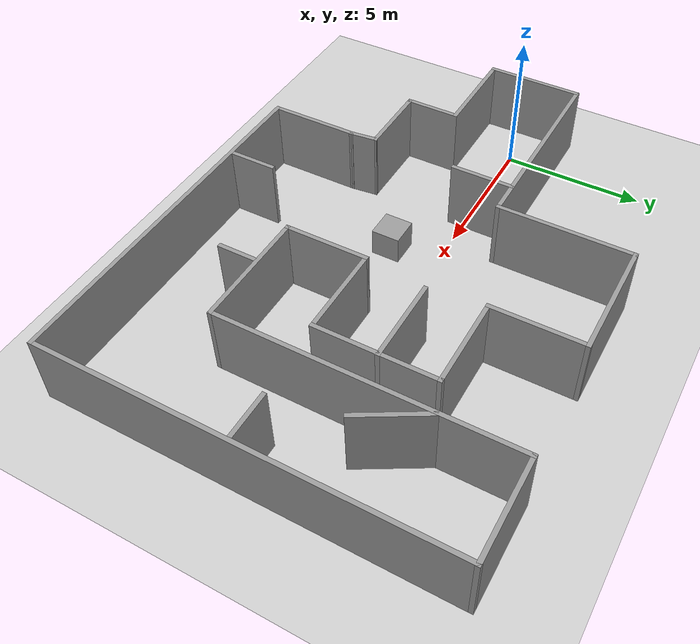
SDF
<sdf version="1.6">
 <world name="default">
  <light name="sun" type="directional">
   <pose>0 0 10 0 -0 0</pose>
   <diffuse>0.8 0.8 0.8 1</diffuse>
   <specular>0.1 0.1 0.1 1</specular>
   <attenuation>
    <range>1000</range>
    <constant>0.9</constant>
    <linear>0.01</linear>
    <quadratic>0.001</quadratic>
   </attenuation>
   <direction>-0.5 0.5 -1</direction>
  </light>
  <model name="ground_plane">
   <static>1</static>
   <link name="link">
    <collision name="collision">
     <geometry><plane><normal>0 0 1</normal><size>100 100</size></plane></geometry>
     <surface><friction><ode><mu>100</mu><mu2>50</mu2></ode></friction></surface>
    </collision>
    <visual name="visual">
     <cast_shadows>0</cast_shadows>
     <geometry><plane><normal>0 0 1</normal><size>100 100</size></plane></geometry>
     <material>
      <script><uri>file://media/materials/scripts/gazebo.material</uri><name>Gazebo/Grey</name></script>
     </material>
    </visual>
   </link>
  </model>
  <gravity>0 0 -9.8</gravity>
  <magnetic_field>6e-06 2.3e-05 -4.2e-05</magnetic_field>
  <atmosphere type="adiabatic"/>
  <physics name="default_physics" default="0" type="ode">
   <max_step_size>0.001</max_step_size>
   <real_time_factor>1</real_time_factor>
   <real_time_update_rate>1000</real_time_update_rate>
  </physics>
  <scene><ambient>0.4 0.4 0.4 1</ambient><background>0.7 0.7 0.7 1</background><shadows>1</shadows></scene>
  <spherical_coordinates>
   <surface_model>EARTH_WGS84</surface_model>
   <latitude_deg>0</latitude_deg>
   <longitude_deg>0</longitude_deg>
   <elevation>0</elevation>
   <heading_deg>0</heading_deg>
  </spherical_coordinates>
  <model name="map_world">
   <pose>7.56591 -0.635643 0 0 -0 0</pose>
   <link name="Wall_0">
    <collision name="Wall_0_Collision">
     <geometry><box><size>3.25 0.15 2.5</size></box></geometry>
     <pose>0 0 1.25 0 -0 0</pose>
    </collision>
    <visual name="Wall_0_Visual">
     <pose>0 0 1.25 0 -0 0</pose>
     <geometry><box><size>3.25 0.15 2.5</size></box></geometry>
     <material>
      <script><uri>file://media/materials/scripts/gazebo.material</uri><name>Gazebo/Grey</name></script>
      <ambient>1 1 1 1</ambient>
     </material>
    </visual>
    <pose>-3.275 -5.375 0 0 0 -1.5708</pose>
   </link>
   <link name="Wall_1">
    <collision name="Wall_1_Collision">
     <geometry><box><size>12.75 0.15 2.5</size></box></geometry>
     <pose>0 0 1.25 0 -0 0</pose>
    </collision>
    <visual name="Wall_1_Visual">
     <pose>0 0 1.25 0 -0 0</pose>
     <geometry><box><size>12.75 0.15 2.5</size></box></geometry>
     <material>
      <script><uri>file://media/materials/scripts/gazebo.material</uri><name>Gazebo/Grey</name></script>
      <ambient>1 1 1 1</ambient>
     </material>
    </visual>
    <pose>3.025 -6.925 0 0 -0 0</pose>
   </link>
   <link name="Wall_10">
    <collision name="Wall_10_Collision">
     <geometry><box><size>3.25 0.15 2.5</size></box></geometry>
     <pose>0 0 1.25 0 -0 0</pose>
    </collision>
    <visual name="Wall_10_Visual">
     <pose>0 0 1.25 0 -0 0</pose>
     <geometry><box><size>3.25 0.15 2.5</size></box></geometry>
     <material>
      <script><uri>file://media/materials/scripts/gazebo.material</uri><name>Gazebo/Grey</name></script>
      <ambient>1 1 1 1</ambient>
     </material>
    </visual>
    <pose>1.875 5.325 0 0 -0 1.5708</pose>
   </link>
   <link name="Wall_11">
    <collision name="Wall_11_Collision">
     <geometry><box><size>4.25 0.15 2.5</size></box></geometry>
     <pose>0 0 1.25 0 -0 0</pose>
    </collision>
    <visual name="Wall_11_Visual">
     <pose>0 0 1.25 0 -0 0</pose>
     <geometry><box><size>4.25 0.15 2.5</size></box></geometry>
     <material>
      <script><uri>file://media/materials/scripts/gazebo.material</uri><name>Gazebo/Grey</name></script>
      <ambient>1 1 1 1</ambient>
     </material>
    </visual>
    <pose>-0.175 6.875 0 0 -0 3.14159</pose>
   </link>
   <link name="Wall_12">
    <collision name="Wall_12_Collision">
     <geometry><box><size>4.75 0.15 2.5</size></box></geometry>
     <pose>0 0 1.25 0 -0 0</pose>
    </collision>
    <visual name="Wall_12_Visual">
     <pose>0 0 1.25 0 -0 0</pose>
     <geometry><box><size>4.75 0.15 2.5</size></box></geometry>
     <material>
      <script><uri>file://media/materials/scripts/gazebo.material</uri><name>Gazebo/Grey</name></script>
      <ambient>1 1 1 1</ambient>
     </material>
    </visual>
    <pose>-2.225 4.575 0 0 0 -1.5708</pose>
   </link>
   <link name="Wall_13">
    <collision name="Wall_13_Collision">
     <geometry><box><size>7.25 0.15 2.5</size></box></geometry>
     <pose>0 0 1.25 0 -0 0</pose>
    </collision>
    <visual name="Wall_13_Visual">
     <pose>0 0 1.25 0 -0 0</pose>
     <geometry><box><size>7.25 0.15 2.5</size></box></geometry>
     <material>
      <script><uri>file://media/materials/scripts/gazebo.material</uri><name>Gazebo/Grey</name></script>
      <ambient>1 1 1 1</ambient>
     </material>
    </visual>
    <pose>-5.775 2.275 0 0 -0 3.14159</pose>
   </link>
   <link name="Wall_14">
    <collision name="Wall_14_Collision">
     <geometry><box><size>3.5 0.15 2.5</size></box></geometry>
     <pose>0 0 1.25 0 -0 0</pose>
    </collision>
    <visual name="Wall_14_Visual">
     <pose>0 0 1.25 0 -0 0</pose>
     <geometry><box><size>3.5 0.15 2.5</size></box></geometry>
     <material>
      <script><uri>file://media/materials/scripts/gazebo.material</uri><name>Gazebo/Grey</name></script>
      <ambient>1 1 1 1</ambient>
     </material>
    </visual>
    <pose>-9.325 0.6 0 0 0 -1.5708</pose>
   </link>
   <link name="Wall_15">
    <collision name="Wall_15_Collision">
     <geometry><box><size>3.5 0.15 2.5</size></box></geometry>
     <pose>0 0 1.25 0 -0 0</pose>
    </collision>
    <visual name="Wall_15_Visual">
     <pose>0 0 1.25 0 -0 0</pose>
     <geometry><box><size>3.5 0.15 2.5</size></box></geometry>
     <material>
      <script><uri>file://media/materials/scripts/gazebo.material</uri><name>Gazebo/Grey</name></script>
      <ambient>1 1 1 1</ambient>
     </material>
    </visual>
    <pose>-7.65 -1.075 0 0 -0 0</pose>
   </link>
   <link name="Wall_16">
    <collision name="Wall_16_Collision">
     <geometry><box><size>2 0.15 2.5</size></box></geometry>
     <pose>0 0 1.25 0 -0 0</pose>
    </collision>
    <visual name="Wall_16_Visual">
     <pose>0 0 1.25 0 -0 0</pose>
     <geometry><box><size>2 0.15 2.5</size></box></geometry>
     <material>
      <script><uri>file://media/materials/scripts/gazebo.material</uri><name>Gazebo/Grey</name></script>
      <ambient>1 1 1 1</ambient>
     </material>
    </visual>
    <pose>-5.975 -2 0 0 0 -1.5708</pose>
   </link>
   <link name="Wall_17">
    <collision name="Wall_17_Collision">
     <geometry><box><size>2.75 0.15 2.5</size></box></geometry>
     <pose>0 0 1.25 0 -0 0</pose>
    </collision>
    <visual name="Wall_17_Visual">
     <pose>0 0 1.25 0 -0 0</pose>
     <geometry><box><size>2.75 0.15 2.5</size></box></geometry>
     <material>
      <script><uri>file://media/materials/scripts/gazebo.material</uri><name>Gazebo/Grey</name></script>
      <ambient>1 1 1 1</ambient>
     </material>
    </visual>
    <pose>-4.675 -2.925 0 0 -0 0</pose>
   </link>
   <link name="Wall_18">
    <collision name="Wall_18_Collision">
     <geometry><box><size>1.05554 0.15 2.5</size></box></geometry>
     <pose>0 0 1.25 0 -0 0</pose>
    </collision>
    <visual name="Wall_18_Visual">
     <pose>0 0 1.25 0 -0 0</pose>
     <geometry><box><size>1.05554 0.15 2.5</size></box></geometry>
     <material>
      <script><uri>file://media/materials/scripts/gazebo.material</uri><name>Gazebo/Grey</name></script>
      <ambient>1 1 1 1</ambient>
     </material>
    </visual>
    <pose>-3.325 -3.375 0 0 0 -1.46014</pose>
   </link>
   <link name="Wall_2">
    <collision name="Wall_2_Collision">
     <geometry><box><size>14 0.15 2.5</size></box></geometry>
     <pose>0 0 1.25 0 -0 0</pose>
    </collision>
    <visual name="Wall_2_Visual">
     <pose>0 0 1.25 0 -0 0</pose>
     <geometry><box><size>14 0.15 2.5</size></box></geometry>
     <material>
      <script><uri>file://media/materials/scripts/gazebo.material</uri><name>Gazebo/Grey</name></script>
      <ambient>1 1 1 1</ambient>
     </material>
    </visual>
    <pose>9.325 0 0 0 -0 1.5708</pose>
   </link>
   <link name="Wall_20">
    <collision name="Wall_20_Collision">
     <geometry><box><size>2.25 0.15 2.5</size></box></geometry>
     <pose>0 0 1.25 0 -0 0</pose>
    </collision>
    <visual name="Wall_20_Visual">
     <pose>0 0 1.25 0 -0 0</pose>
     <geometry><box><size>2.25 0.15 2.5</size></box></geometry>
     <material>
      <script><uri>file://media/materials/scripts/gazebo.material</uri><name>Gazebo/Grey</name></script>
      <ambient>1 1 1 1</ambient>
     </material>
    </visual>
    <pose>-3.34071 1.19162 0 0 0 -1.5708</pose>
   </link>
   <link name="Wall_22">
    <collision name="Wall_22_Collision">
     <geometry><box><size>3 0.15 2.5</size></box></geometry>
     <pose>0 0 1.25 0 -0 0</pose>
    </collision>
    <visual name="Wall_22_Visual">
     <pose>0 0 1.25 0 -0 0</pose>
     <geometry><box><size>3 0.15 2.5</size></box></geometry>
     <material>
      <script><uri>file://media/materials/scripts/gazebo.material</uri><name>Gazebo/Grey</name></script>
      <ambient>1 1 1 1</ambient>
     </material>
    </visual>
    <pose>3.56015 1.84262 0 0 -0 3.14159</pose>
   </link>
   <link name="Wall_24">
    <collision name="Wall_24_Collision">
     <geometry><box><size>2.5 0.15 2.5</size></box></geometry>
     <pose>0 0 1.25 0 -0 0</pose>
    </collision>
    <visual name="Wall_24_Visual">
     <pose>0 0 1.25 0 -0 0</pose>
     <geometry><box><size>2.5 0.15 2.5</size></box></geometry>
     <material>
      <script><uri>file://media/materials/scripts/gazebo.material</uri><name>Gazebo/Grey</name></script>
      <ambient>1 1 1 1</ambient>
     </material>
    </visual>
    <pose>6.61006 3.13926 0 0 0 -1.0472</pose>
   </link>
   <link name="Wall_27">
    <collision name="Wall_27_Collision">
     <geometry><box><size>1.75 0.15 2.5</size></box></geometry>
     <pose>0 0 1.25 0 -0 0</pose>
    </collision>
    <visual name="Wall_27_Visual">
     <pose>0 0 1.25 0 -0 0</pose>
     <geometry><box><size>1.75 0.15 2.5</size></box></geometry>
     <material>
      <script><uri>file://media/materials/scripts/gazebo.material</uri><name>Gazebo/Grey</name></script>
      <ambient>1 1 1 1</ambient>
     </material>
    </visual>
    <pose>8.49438 -0.178996 0 0 -0 3.14159</pose>
   </link>
   <link name="Wall_29">
    <collision name="Wall_29_Collision">
     <geometry><box><size>1.75 0.15 2.5</size></box></geometry>
     <pose>0 0 1.25 0 -0 0</pose>
    </collision>
    <visual name="Wall_29_Visual">
     <pose>0 0 1.25 0 -0 0</pose>
     <geometry><box><size>1.75 0.15 2.5</size></box></geometry>
     <material>
      <script><uri>file://media/materials/scripts/gazebo.material</uri><name>Gazebo/Grey</name></script>
      <ambient>1 1 1 1</ambient>
     </material>
    </visual>
    <pose>-0.361492 -6.05565 0 0 -0 1.5708</pose>
   </link>
   <link name="Wall_3">
    <collision name="Wall_3_Collision">
     <geometry><box><size>3.5 0.15 2.5</size></box></geometry>
     <pose>0 0 1.25 0 -0 0</pose>
    </collision>
    <visual name="Wall_3_Visual">
     <pose>0 0 1.25 0 -0 0</pose>
     <geometry><box><size>3.5 0.15 2.5</size></box></geometry>
     <material>
      <script><uri>file://media/materials/scripts/gazebo.material</uri><name>Gazebo/Grey</name></script>
      <ambient>1 1 1 1</ambient>
     </material>
    </visual>
    <pose>7.65 6.925 0 0 -0 3.14159</pose>
   </link>
   <link name="Wall_31">
    <collision name="Wall_31_Collision">
     <geometry><box><size>1.5 0.15 2.5</size></box></geometry>
     <pose>0 0 1.25 0 -0 0</pose>
    </collision>
    <visual name="Wall_31_Visual">
     <pose>0 0 1.25 0 -0 0</pose>
     <geometry><box><size>1.5 0.15 2.5</size></box></geometry>
     <material>
      <script><uri>file://media/materials/scripts/gazebo.material</uri><name>Gazebo/Grey</name></script>
      <ambient>1 1 1 1</ambient>
     </material>
    </visual>
    <pose>3.57534 -3.85982 0 0 0 -1.5708</pose>
   </link>
   <link name="Wall_4">
    <collision name="Wall_4_Collision">
     <geometry><box><size>10.25 0.15 2.5</size></box></geometry>
     <pose>0 0 1.25 0 -0 0</pose>
    </collision>
    <visual name="Wall_4_Visual">
     <pose>0 0 1.25 0 -0 0</pose>
     <geometry><box><size>10.25 0.15 2.5</size></box></geometry>
     <material>
      <script><uri>file://media/materials/scripts/gazebo.material</uri><name>Gazebo/Grey</name></script>
      <ambient>1 1 1 1</ambient>
     </material>
    </visual>
    <pose>5.975 1.875 0 0 0 -1.5708</pose>
   </link>
   <link name="Wall_5">
    <collision name="Wall_5_Collision">
     <geometry><box><size>4.25 0.15 2.5</size></box></geometry>
     <pose>0 0 1.25 0 -0 0</pose>
    </collision>
    <visual name="Wall_5_Visual">
     <pose>0 0 1.25 0 -0 0</pose>
     <geometry><box><size>4.25 0.15 2.5</size></box></geometry>
     <material>
      <script><uri>file://media/materials/scripts/gazebo.material</uri><name>Gazebo/Grey</name></script>
      <ambient>1 1 1 1</ambient>
     </material>
    </visual>
    <pose>3.925 -3.175 0 0 -0 3.14159</pose>
   </link>
   <link name="Wall_6">
    <collision name="Wall_6_Collision">
     <geometry><box><size>3 0.15 2.5</size></box></geometry>
     <pose>0 0 1.25 0 -0 0</pose>
    </collision>
    <visual name="Wall_6_Visual">
     <pose>0 0 1.25 0 -0 0</pose>
     <geometry><box><size>3 0.15 2.5</size></box></geometry>
     <material>
      <script><uri>file://media/materials/scripts/gazebo.material</uri><name>Gazebo/Grey</name></script>
      <ambient>1 1 1 1</ambient>
     </material>
    </visual>
    <pose>1.875 -1.75 0 0 -0 1.5708</pose>
   </link>
   <link name="Wall_7">
    <collision name="Wall_7_Collision">
     <geometry><box><size>3.25 0.15 2.5</size></box></geometry>
     <pose>0 0 1.25 0 -0 0</pose>
    </collision>
    <visual name="Wall_7_Visual">
     <pose>0 0 1.25 0 -0 0</pose>
     <geometry><box><size>3.25 0.15 2.5</size></box></geometry>
     <material>
      <script><uri>file://media/materials/scripts/gazebo.material</uri><name>Gazebo/Grey</name></script>
      <ambient>1 1 1 1</ambient>
     </material>
    </visual>
    <pose>3.425 -0.325 0 0 -0 0</pose>
   </link>
   <link name="Wall_8">
    <collision name="Wall_8_Collision">
     <geometry><box><size>4.25 0.15 2.5</size></box></geometry>
     <pose>0 0 1.25 0 -0 0</pose>
    </collision>
    <visual name="Wall_8_Visual">
     <pose>0 0 1.25 0 -0 0</pose>
     <geometry><box><size>4.25 0.15 2.5</size></box></geometry>
     <material>
      <script><uri>file://media/materials/scripts/gazebo.material</uri><name>Gazebo/Grey</name></script>
      <ambient>1 1 1 1</ambient>
     </material>
    </visual>
    <pose>4.975 1.725 0 0 -0 1.5708</pose>
   </link>
   <link name="Wall_9">
    <collision name="Wall_9_Collision">
     <geometry><box><size>3.25 0.15 2.5</size></box></geometry>
     <pose>0 0 1.25 0 -0 0</pose>
    </collision>
    <visual name="Wall_9_Visual">
     <pose>0 0 1.25 0 -0 0</pose>
     <geometry><box><size>3.25 0.15 2.5</size></box></geometry>
     <material>
      <script><uri>file://media/materials/scripts/gazebo.material</uri><name>Gazebo/Grey</name></script>
      <ambient>1 1 1 1</ambient>
     </material>
    </visual>
    <pose>3.425 3.775 0 0 -0 3.14159</pose>
   </link>
   <static>1</static>
  </model>
  <model name="unit_box_0">
   <pose>6.4509 -1.66042 0.499995 -1e-05 0 0</pose>
   <link name="link">
    <inertial>
     <mass>1</mass>
     <inertia>
      <ixx>0.166667</ixx>
      <ixy>0</ixy>
      <ixz>0</ixz>
      <iyy>0.166667</iyy>
      <iyz>0</iyz>
      <izz>0.166667</izz>
     </inertia>
    </inertial>
    <collision name="collision"><geometry><box><size>1 1 1</size></box></geometry></collision>
    <visual name="visual">
     <geometry><box><size>1 1 1</size></box></geometry>
     <material>
      <script><name>Gazebo/Grey</name><uri>file://media/materials/scripts/gazebo.material</uri></script>
     </material>
    </visual>
   </link>
  </model>
 </world>
</sdf>
